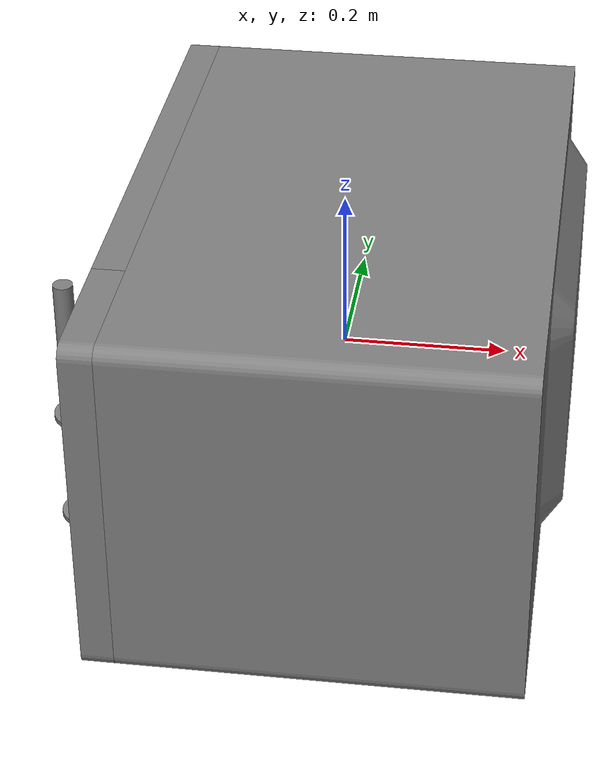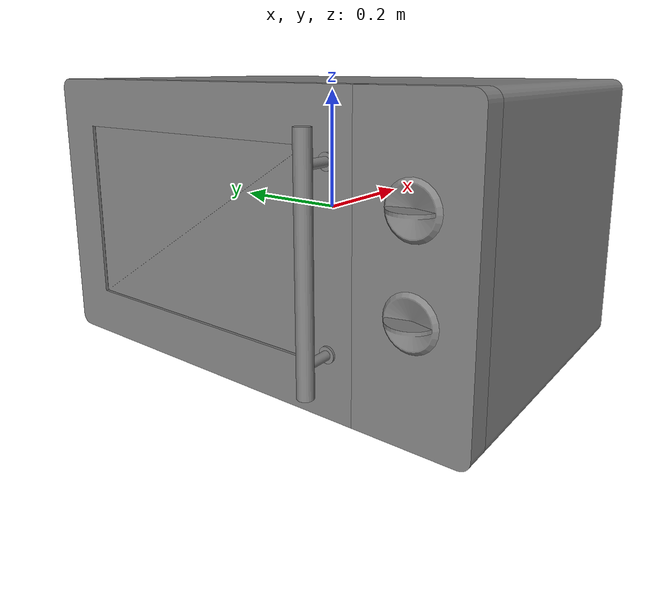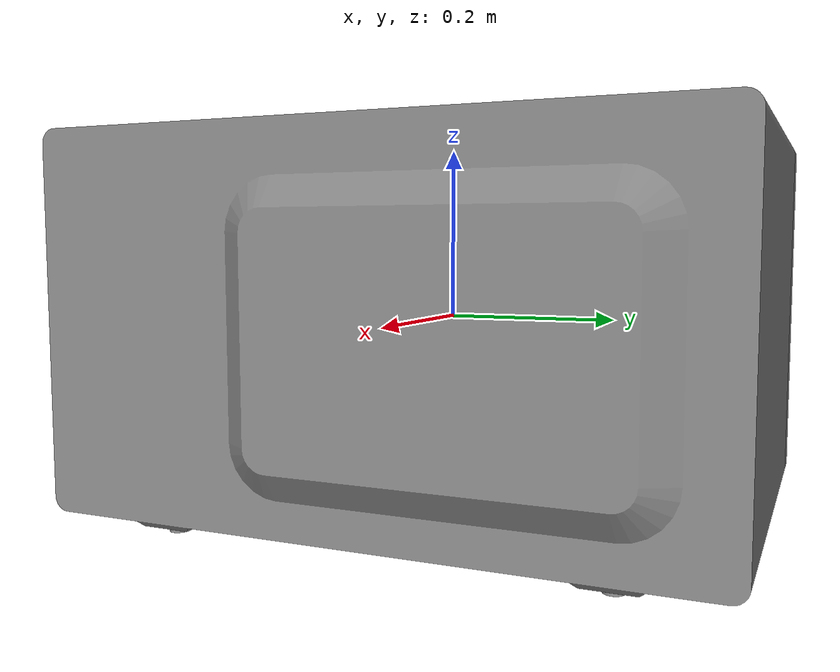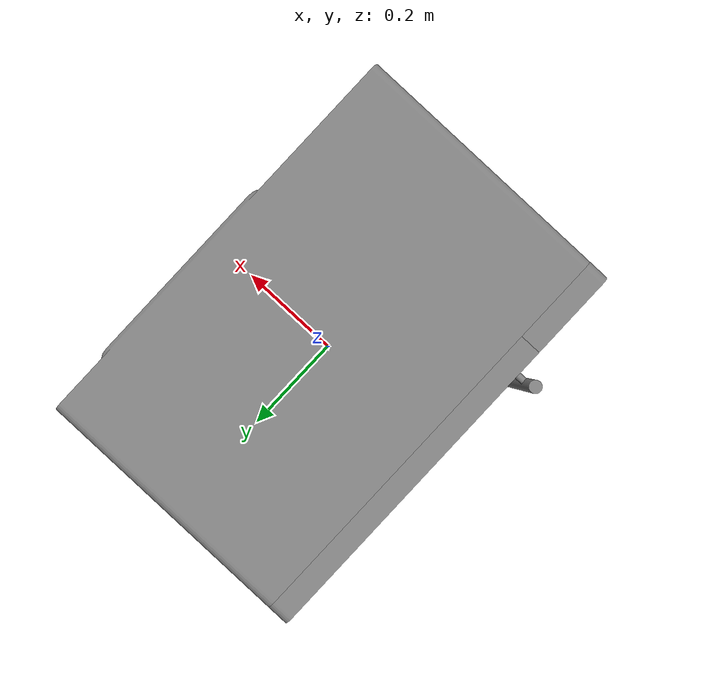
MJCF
<mujoco model="partnet_dc5c91c8c01b1c8c506c648223cdabe9">
    <compiler angle="radian" />
    <size njmax="500" nconmax="100" />
    <asset>
        <mesh name="original-12" file="original-12.stl" scale="0.5 0.5 0.5" />
        <mesh name="original-7" file="original-7.stl" scale="0.5 0.5 0.5" />
        <mesh name="original-9" file="original-9.stl" scale="0.5 0.5 0.5" />
        <mesh name="original-11" file="original-11.stl" scale="0.5 0.5 0.5" />
        <mesh name="original-10" file="original-10.stl" scale="0.5 0.5 0.5" />
        <mesh name="original-4" file="original-4.stl" scale="0.5 0.5 0.5" />
        <mesh name="original-3" file="original-3.stl" scale="0.5 0.5 0.5" />
        <mesh name="original-5" file="original-5.stl" scale="0.5 0.5 0.5" />
        <mesh name="new-4" file="new-4.stl" scale="0.5 0.5 0.5" />
        <mesh name="new-3" file="new-3.stl" scale="0.5 0.5 0.5" />
        <mesh name="new-2" file="new-2.stl" scale="0.5 0.5 0.5" />
        <mesh name="new-1" file="new-1.stl" scale="0.5 0.5 0.5" />
        <mesh name="new-0" file="new-0.stl" scale="0.5 0.5 0.5" />
    </asset>
    <worldbody>
    <body>
        <body name="object">
            <geom quat="0.5 0.5 -0.5 -0.5" type="mesh" group="0" mesh="original-5" conaffinity="0" contype="0" />
            <geom quat="0.5 0.5 -0.5 -0.5" type="mesh" group="0" mesh="new-4" conaffinity="0" contype="0" />
            <geom quat="0.5 0.5 -0.5 -0.5" type="mesh" group="0" mesh="new-3" conaffinity="0" contype="0" />
            <geom quat="0.5 0.5 -0.5 -0.5" type="mesh" group="0" mesh="new-2" conaffinity="0" contype="0" />
            <geom quat="0.5 0.5 -0.5 -0.5" type="mesh" group="0" mesh="new-1" conaffinity="0" contype="0" />
            <geom quat="0.5 0.5 -0.5 -0.5" type="mesh" group="0" mesh="new-0" conaffinity="0" contype="0" />
            <body name="link_0" pos="-0.06335655 0.1083783 0.06529725" quat="0.5 0.5 -0.5 -0.5">
                <inertial pos="0.289079 -0.220004 0.0229685" quat="0.000151834 0.70444 -5.77531e-05 0.709764" mass="88.1961" diaginertia="15.7799 10.5248 5.40535" />
                <joint name="joint_0" pos="0.0 0.0 0.0" axis="0 -1 0" limited="true" range="0 1.5708" />
                <geom pos="0.1083783 -0.06529725 -0.06335655" type="mesh" group="0" mesh="original-12" />
                <geom pos="0.1083783 -0.06529725 -0.06335655" type="mesh" group="0" mesh="original-7" />
                <geom pos="0.1083783 -0.06529725 -0.06335655" type="mesh" group="0" mesh="original-9" name="panel" />
                <geom pos="0.1083783 -0.06529725 -0.06335655" type="mesh" group="0" mesh="original-11" />
                <geom pos="0.1083783 -0.06529725 -0.06335655" type="mesh" group="0" mesh="original-10" />
            </body>
            <body name="link_1" pos="-0.08643975 -0.09439109999999999 -0.0169536" quat="0.5 0.5 -0.5 -0.5">
                <inertial pos="-0.001598005 4.342605e-05 -0.0244265" quat="0 0.707107 0 0.707107" mass="0.481512" diaginertia="0.000936918 0.00059046 0.000484734" />
                <joint name="joint_1" pos="0.0 0.0 0.0" axis="0 0 1" />
                <geom pos="-0.09439109999999999 0.0169536 -0.08643975" type="mesh" group="0" mesh="original-4" />
            </body>
            <body name="link_2" pos="-0.08606699999999999 -0.0941571 0.02345595" quat="0.5 0.5 -0.5 -0.5">
                <inertial pos="-0.000818005 0.000716005 -0.02318385" quat="0 0.707107 0 0.707107" mass="0.481513" diaginertia="0.000936919 0.00059046 0.000484735" />
                <joint name="joint_2" pos="0.0 0.0 0.0" axis="0 0 1" />
                <geom pos="-0.0941571 -0.02345595 -0.08606699999999999" type="mesh" group="0" mesh="original-3" />
            </body>
        </body>
    <site name="bottom_site" pos="0 0 -0.3" rgba="0 0 0 0" size="0.005" />
    <site name="top_site" pos="0 0 0.3" rgba="0 0 0 0" size="0.005" />
    <site name="horizontal_radius_site" pos="0.3 0 0" rgba="0 0 0 0" size="0.1" />
    </body>
    </worldbody>
</mujoco>
